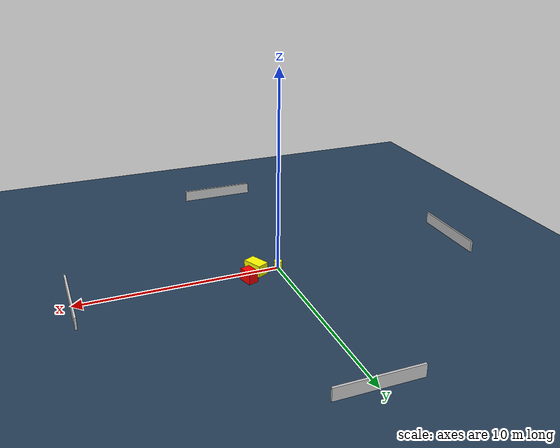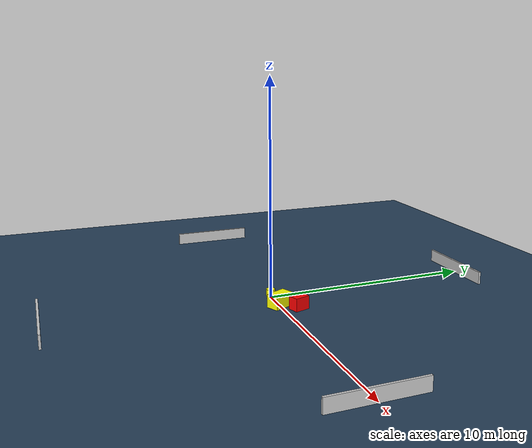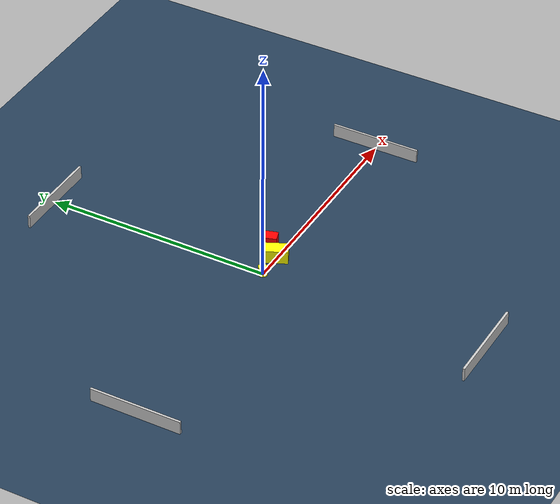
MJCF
<?xml version="1.0" ?>
<mujoco model="generated_environment">
  <option timestep="0.01" integrator="RK4" cone="elliptic"/>
  <default>
    <geom density="1"/>
  </default>
  <asset>
    <texture builtin="gradient" height="3072" name="skybox" rgb1="0.3 0.5 0.7" rgb2="0 0 0" type="skybox" width="512"/>
    <texture builtin="checker" height="300" name="groundplane" rgb1="0.2 0.3 0.4" rgb2="0.1 0.2 0.3" type="2d" width="300"/>
    <material name="groundplane" reflectance="0.2" texrepeat="5 5" texture="groundplane"/>
  </asset>
  <worldbody>
    <light dir="0 0 -1" directional="true" pos="0 0 1.5"/>
    <geom condim="3" friction="0.5 0.005 0.001" material="groundplane" name="floor" pos="0 0 0" size="0 0 0.05" type="plane"/>
    <body name="walls">
      <geom name="wall_1" condim="4" pos="-10.0 0.0 0.3" rgba="0.800000011920929 0.800000011920929 0.800000011920929 1.0" size="0.05 2.0 0.3" type="box"/>
      <geom name="wall_2" condim="4" pos="10.0 0.0 0.3" rgba="0.800000011920929 0.800000011920929 0.800000011920929 1.0" size="0.05 2.0 0.3" type="box"/>
      <geom name="wall_3" condim="4" pos="0.0 -10.0 0.3" rgba="0.800000011920929 0.800000011920929 0.800000011920929 1.0" size="2.0 0.05 0.3" type="box"/>
      <geom name="wall_4" condim="4" pos="0.0 10.0 0.3" rgba="0.800000011920929 0.800000011920929 0.800000011920929 1.0" size="2.0 0.05 0.3" type="box"/>
    </body>
    <body name="robot">
      <joint name="joint_x" type="slide" pos="0 0 0" axis="1 0 0"/>
      <joint name="joint_y" type="slide" pos="0 0 0" axis="0 1 0"/>
      <geom name="robot" type="cylinder" pos="0.0 0.0 0.2" size="0.2 0.2 0.0" mass="5.0" friction="1.0 0.005 0.0001" condim="4" rgba="1.0 1.0 0.0 1.0"/>
    </body>
    <body name="obstacle_1_movable">
      <geom name="obstacle_1_movable" condim="4" pos="1.158479985020009 0.008751385021332717 0.3" euler="0 0 25.399296889197032" friction="0.0 0.005 0.001" rgba="1.0 1.0 0.0 1.0" size="0.3062579220920176 0.5001169205293647 0.3" type="box" mass="0.1"/>
      <joint type="free"/>
    </body>
    <body name="obstacle_2_static">
      <geom name="obstacle_2_static" condim="4" pos="1.757420681252111 0.6773930393426376 0.3" euler="0 0 287.3235721495929" friction="0.0 0.005 0.001" rgba="1.0 0.0 0.0 1.0" size="0.35302357978201404 0.24925840693557894 0.3" type="box"/>
    </body>
  </worldbody>
  <actuator>
    <motor name="actuator_x" joint="joint_x" gear="1" ctrlrange="-1 1"/>
    <motor name="actuator_y" joint="joint_y" gear="1" ctrlrange="-1 1"/>
  </actuator>
</mujoco>
